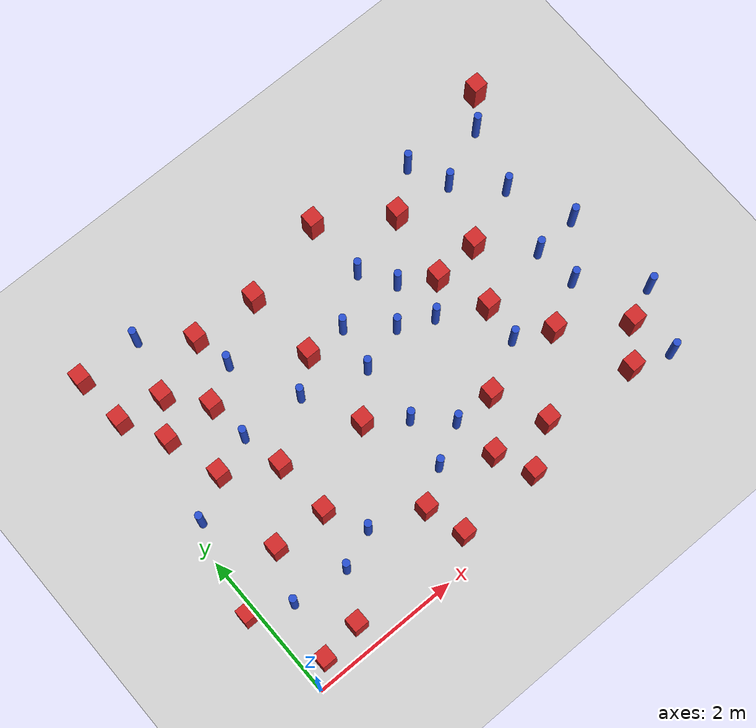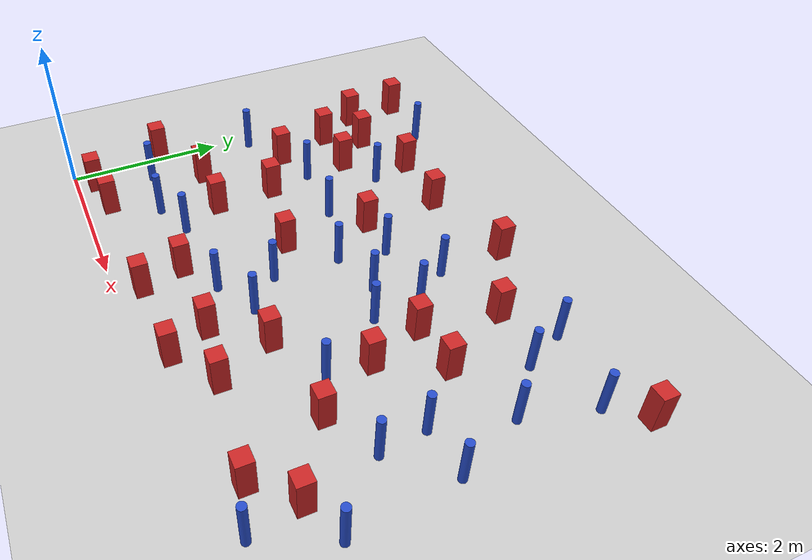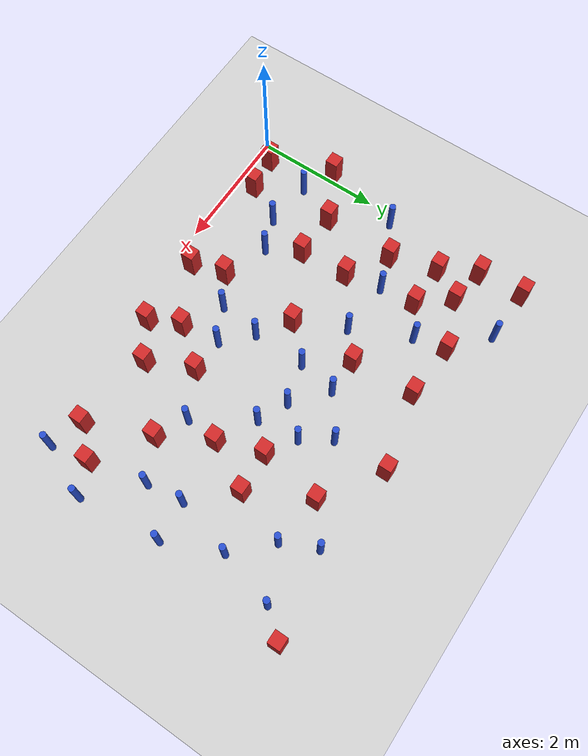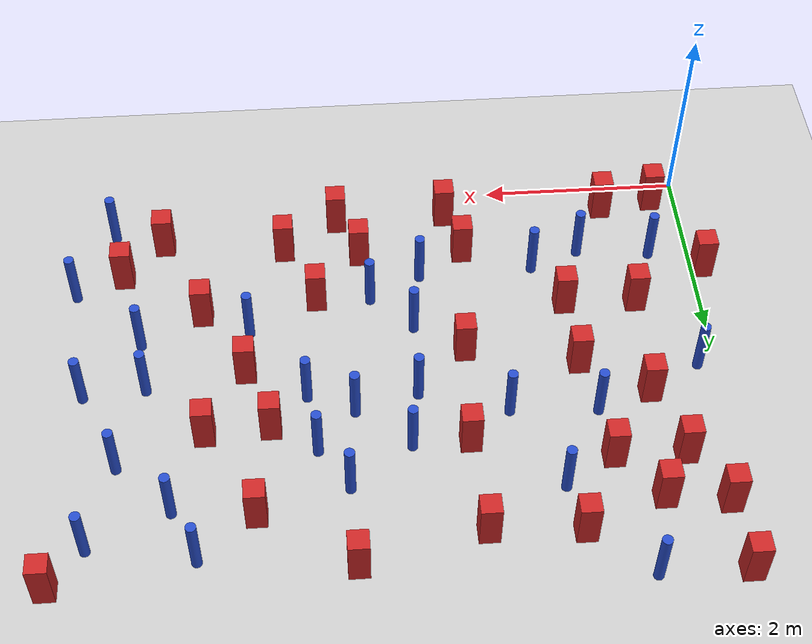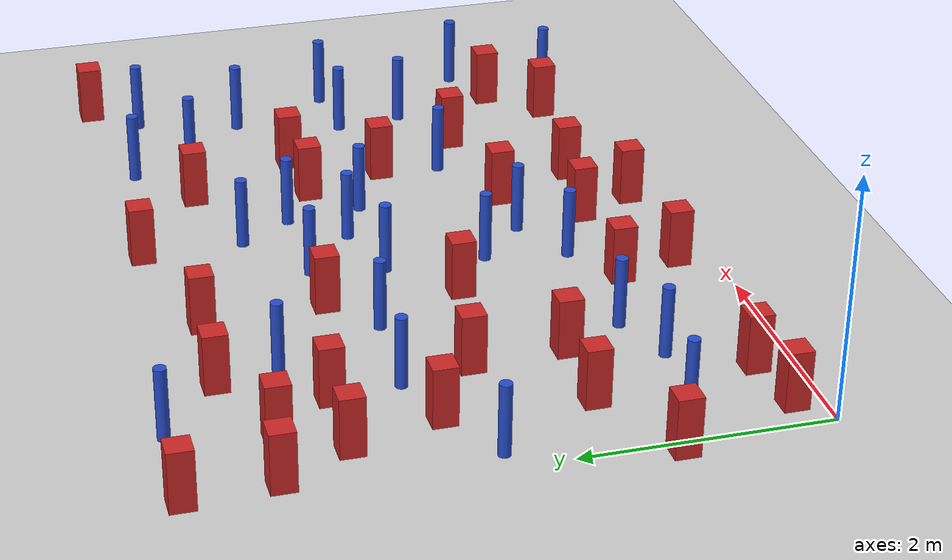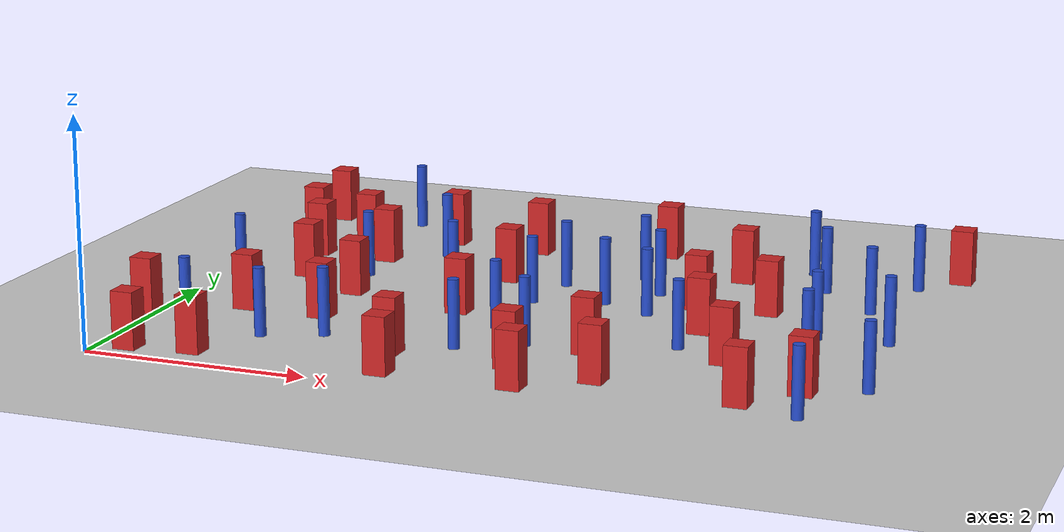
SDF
<sdf version="1.6">
 <world name="default">
  <model name="ground_plane">
   <static>1</static>
   <link name="link">
    <collision name="collision">
     <geometry><plane><normal>0 0 1</normal><size>100 100</size></plane></geometry>
     <surface><friction><ode><mu>100</mu><mu2>50</mu2></ode></friction></surface>
    </collision>
    <visual name="visual">
     <cast_shadows>0</cast_shadows>
     <geometry><plane><normal>0 0 1</normal><size>100 100</size></plane></geometry>
     <material>
      <ambient>1.0 1.0 1.0 1.0</ambient>
      <diffuse>0.8 0.8 0.8 1.0</diffuse>
      <specular>0.01 0.01 0.01 1.000000</specular>
     </material>
    </visual>
   </link>
  </model>
  <model name="pole_obstacle1">
   <static>true</static>
   <pose>3.94145928123 3.25235252601 2.88873142074e-08 -9.90536690232e-09 4.6021994898e-07 -1.20965994968e-07</pose>
   <link name="link">
    <pose>0 0 0.3 0 -0 0</pose>
    <inertial>
     <mass>1</mass>
     <inertia><ixx>0.145833</ixx><ixy>0</ixy><ixz>0</ixz><iyy>0.145833</iyy><iyz>0</iyz><izz>0.125</izz></inertia>
    </inertial>
    <collision name="collision">
     <geometry><cylinder><radius>0.05</radius><length>.6</length></cylinder></geometry>
    </collision>
    <visual name="visual">
     <geometry><cylinder><radius>0.05</radius><length>.6</length></cylinder></geometry>
     <material>
      <script><name>Gazebo/Blue</name><uri>file://media/materials/scripts/gazebo.material</uri></script>
     </material>
    </visual>
   </link>
  </model>
  <model name="pole_obstacle5">
   <static>true</static>
   <pose>1.15568861815 0.909828647617 2.88873142074e-08 -9.90536689692e-09 4.60219948993e-07 -1.20965994958e-07</pose>
   <link name="link">
    <pose>0 0 0.3 0 -0 0</pose>
    <inertial>
     <mass>1</mass>
     <inertia><ixx>0.145833</ixx><ixy>0</ixy><ixz>0</ixz><iyy>0.145833</iyy><iyz>0</iyz><izz>0.125</izz></inertia>
    </inertial>
    <collision name="collision">
     <geometry><cylinder><radius>0.05</radius><length>.6</length></cylinder></geometry>
    </collision>
    <visual name="visual">
     <geometry><cylinder><radius>0.05</radius><length>.6</length></cylinder></geometry>
     <material>
      <script><name>Gazebo/Blue</name><uri>file://media/materials/scripts/gazebo.material</uri></script>
     </material>
    </visual>
   </link>
  </model>
  <model name="square_post_obstacle7">
   <static>true</static>
   <pose>5.44254563058 0.562767419311 8.22691968438e-08 7.2212513382e-06 -7.54495500217e-07 2.29674213826e-05</pose>
   <link name="link">
    <pose>0 0 0.25 0 -0 0</pose>
    <inertial>
     <mass>100</mass>
     <inertia>
      <ixx>0.166667</ixx>
      <ixy>0</ixy>
      <ixz>0</ixz>
      <iyy>0.166667</iyy>
      <iyz>0</iyz>
      <izz>0.166667</izz>
     </inertia>
    </inertial>
    <collision name="collision"><geometry><box><size>.2 .2 .5</size></box></geometry></collision>
    <visual name="visual">
     <geometry><box><size>.2 .2 .5</size></box></geometry>
     <material>
      <script><name>Gazebo/Red</name><uri>file://media/materials/scripts/gazebo.material</uri></script>
     </material>
    </visual>
   </link>
  </model>
  <model name="pole_obstacle6">
   <static>true</static>
   <pose>3.05227530506 3.25262592409 2.88873142074e-08 -9.90536690232e-09 4.6021994898e-07 -1.20965994968e-07</pose>
   <link name="link">
    <pose>0 0 0.3 0 -0 0</pose>
    <inertial>
     <mass>1</mass>
     <inertia><ixx>0.145833</ixx><ixy>0</ixy><ixz>0</ixz><iyy>0.145833</iyy><iyz>0</iyz><izz>0.125</izz></inertia>
    </inertial>
    <collision name="collision">
     <geometry><cylinder><radius>0.05</radius><length>.6</length></cylinder></geometry>
    </collision>
    <visual name="visual">
     <geometry><cylinder><radius>0.05</radius><length>.6</length></cylinder></geometry>
     <material>
      <script><name>Gazebo/Blue</name><uri>file://media/materials/scripts/gazebo.material</uri></script>
     </material>
    </visual>
   </link>
  </model>
  <model name="square_post_obstacle17">
   <static>true</static>
   <pose>2.50358971569 3.25167115299 8.22691968438e-08 7.2212513382e-06 -7.54495500217e-07 2.29674213826e-05</pose>
   <link name="link">
    <pose>0 0 0.25 0 -0 0</pose>
    <inertial>
     <mass>100</mass>
     <inertia>
      <ixx>0.166667</ixx>
      <ixy>0</ixy>
      <ixz>0</ixz>
      <iyy>0.166667</iyy>
      <iyz>0</iyz>
      <izz>0.166667</izz>
     </inertia>
    </inertial>
    <collision name="collision"><geometry><box><size>.2 .2 .5</size></box></geometry></collision>
    <visual name="visual">
     <geometry><box><size>.2 .2 .5</size></box></geometry>
     <material>
      <script><name>Gazebo/Red</name><uri>file://media/materials/scripts/gazebo.material</uri></script>
     </material>
    </visual>
   </link>
  </model>
  <model name="pole_obstacle14">
   <static>true</static>
   <pose>3.56848363034 2.82322414847 2.88873142074e-08 -9.90536690232e-09 4.6021994898e-07 -1.20965994968e-07</pose>
   <link name="link">
    <pose>0 0 0.3 0 -0 0</pose>
    <inertial>
     <mass>1</mass>
     <inertia><ixx>0.145833</ixx><ixy>0</ixy><ixz>0</ixz><iyy>0.145833</iyy><iyz>0</iyz><izz>0.125</izz></inertia>
    </inertial>
    <collision name="collision">
     <geometry><cylinder><radius>0.05</radius><length>.6</length></cylinder></geometry>
    </collision>
    <visual name="visual">
     <geometry><cylinder><radius>0.05</radius><length>.6</length></cylinder></geometry>
     <material>
      <script><name>Gazebo/Blue</name><uri>file://media/materials/scripts/gazebo.material</uri></script>
     </material>
    </visual>
   </link>
  </model>
  <model name="pole_obstacle18">
   <static>true</static>
   <pose>5.96523020983 0.386765181012 2.88873142074e-08 -9.90536689981e-09 4.60219948986e-07 -1.20965994962e-07</pose>
   <link name="link">
    <pose>0 0 0.3 0 -0 0</pose>
    <inertial>
     <mass>1</mass>
     <inertia><ixx>0.145833</ixx><ixy>0</ixy><ixz>0</ixz><iyy>0.145833</iyy><iyz>0</iyz><izz>0.125</izz></inertia>
    </inertial>
    <collision name="collision">
     <geometry><cylinder><radius>0.05</radius><length>.6</length></cylinder></geometry>
    </collision>
    <visual name="visual">
     <geometry><cylinder><radius>0.05</radius><length>.6</length></cylinder></geometry>
     <material>
      <script><name>Gazebo/Blue</name><uri>file://media/materials/scripts/gazebo.material</uri></script>
     </material>
    </visual>
   </link>
  </model>
  <model name="square_post_obstacle28">
   <static>true</static>
   <pose>0.71189217481 2.78563970039 8.22691968438e-08 7.2212513382e-06 -7.54495500217e-07 2.29674213826e-05</pose>
   <link name="link">
    <pose>0 0 0.25 0 -0 0</pose>
    <inertial>
     <mass>100</mass>
     <inertia>
      <ixx>0.166667</ixx>
      <ixy>0</ixy>
      <ixz>0</ixz>
      <iyy>0.166667</iyy>
      <iyz>0</iyz>
      <izz>0.166667</izz>
     </inertia>
    </inertial>
    <collision name="collision"><geometry><box><size>.2 .2 .5</size></box></geometry></collision>
    <visual name="visual">
     <geometry><box><size>.2 .2 .5</size></box></geometry>
     <material>
      <script><name>Gazebo/Red</name><uri>file://media/materials/scripts/gazebo.material</uri></script>
     </material>
    </visual>
   </link>
  </model>
  <model name="square_post_obstacle39">
   <static>true</static>
   <pose>0.501299653124 3.51987766097 8.22691968438e-08 7.2212513382e-06 -7.54495500217e-07 2.29674213826e-05</pose>
   <link name="link">
    <pose>0 0 0.25 0 -0 0</pose>
    <inertial>
     <mass>100</mass>
     <inertia>
      <ixx>0.166667</ixx>
      <ixy>0</ixy>
      <ixz>0</ixz>
      <iyy>0.166667</iyy>
      <iyz>0</iyz>
      <izz>0.166667</izz>
     </inertia>
    </inertial>
    <collision name="collision"><geometry><box><size>.2 .2 .5</size></box></geometry></collision>
    <visual name="visual">
     <geometry><box><size>.2 .2 .5</size></box></geometry>
     <material>
      <script><name>Gazebo/Red</name><uri>file://media/materials/scripts/gazebo.material</uri></script>
     </material>
    </visual>
   </link>
  </model>
  <model name="square_post_obstacle40">
   <static>true</static>
   <pose>0.27143165079 0.245713718609 8.22691968438e-08 7.2212513382e-06 -7.54495500217e-07 2.29674213826e-05</pose>
   <link name="link">
    <pose>0 0 0.25 0 -0 0</pose>
    <inertial>
     <mass>100</mass>
     <inertia>
      <ixx>0.166667</ixx>
      <ixy>0</ixy>
      <ixz>0</ixz>
      <iyy>0.166667</iyy>
      <iyz>0</iyz>
      <izz>0.166667</izz>
     </inertia>
    </inertial>
    <collision name="collision"><geometry><box><size>.2 .2 .5</size></box></geometry></collision>
    <visual name="visual">
     <geometry><box><size>.2 .2 .5</size></box></geometry>
     <material>
      <script><name>Gazebo/Red</name><uri>file://media/materials/scripts/gazebo.material</uri></script>
     </material>
    </visual>
   </link>
  </model>
  <model name="pole_obstacle48">
   <static>true</static>
   <pose>1.6671823128 3.79995229118 2.88873142074e-08 -9.90536689791e-09 4.6021994899e-07 -1.20965994959e-07</pose>
   <link name="link">
    <pose>0 0 0.3 0 -0 0</pose>
    <inertial>
     <mass>1</mass>
     <inertia><ixx>0.145833</ixx><ixy>0</ixy><ixz>0</ixz><iyy>0.145833</iyy><iyz>0</iyz><izz>0.125</izz></inertia>
    </inertial>
    <collision name="collision">
     <geometry><cylinder><radius>0.05</radius><length>.6</length></cylinder></geometry>
    </collision>
    <visual name="visual">
     <geometry><cylinder><radius>0.05</radius><length>.6</length></cylinder></geometry>
     <material>
      <script><name>Gazebo/Blue</name><uri>file://media/materials/scripts/gazebo.material</uri></script>
     </material>
    </visual>
   </link>
  </model>
  <model name="pole_obstacle49">
   <static>true</static>
   <pose>2.95070600059 2.65302911917 2.88873142074e-08 -9.90536690232e-09 4.6021994898e-07 -1.20965994968e-07</pose>
   <link name="link">
    <pose>0 0 0.3 0 -0 0</pose>
    <inertial>
     <mass>1</mass>
     <inertia><ixx>0.145833</ixx><ixy>0</ixy><ixz>0</ixz><iyy>0.145833</iyy><iyz>0</iyz><izz>0.125</izz></inertia>
    </inertial>
    <collision name="collision">
     <geometry><cylinder><radius>0.05</radius><length>.6</length></cylinder></geometry>
    </collision>
    <visual name="visual">
     <geometry><cylinder><radius>0.05</radius><length>.6</length></cylinder></geometry>
     <material>
      <script><name>Gazebo/Blue</name><uri>file://media/materials/scripts/gazebo.material</uri></script>
     </material>
    </visual>
   </link>
  </model>
  <model name="square_post_obstacle52">
   <static>true</static>
   <pose>0.824553978532 0.324145552143 8.22691968438e-08 7.22125133819e-06 -7.54495500217e-07 2.29674213826e-05</pose>
   <link name="link">
    <pose>0 0 0.25 0 -0 0</pose>
    <inertial>
     <mass>100</mass>
     <inertia>
      <ixx>0.166667</ixx>
      <ixy>0</ixy>
      <ixz>0</ixz>
      <iyy>0.166667</iyy>
      <iyz>0</iyz>
      <izz>0.166667</izz>
     </inertia>
    </inertial>
    <collision name="collision"><geometry><box><size>.2 .2 .5</size></box></geometry></collision>
    <visual name="visual">
     <geometry><box><size>.2 .2 .5</size></box></geometry>
     <material>
      <script><name>Gazebo/Red</name><uri>file://media/materials/scripts/gazebo.material</uri></script>
     </material>
    </visual>
   </link>
  </model>
  <model name="square_post_obstacle57">
   <static>true</static>
   <pose>5.03759961073 1.54476784764 8.22691968438e-08 7.2212513382e-06 -7.54495500217e-07 2.29674213826e-05</pose>
   <link name="link">
    <pose>0 0 0.25 0 -0 0</pose>
    <inertial>
     <mass>100</mass>
     <inertia>
      <ixx>0.166667</ixx>
      <ixy>0</ixy>
      <ixz>0</ixz>
      <iyy>0.166667</iyy>
      <iyz>0</iyz>
      <izz>0.166667</izz>
     </inertia>
    </inertial>
    <collision name="collision"><geometry><box><size>.2 .2 .5</size></box></geometry></collision>
    <visual name="visual">
     <geometry><box><size>.2 .2 .5</size></box></geometry>
     <material>
      <script><name>Gazebo/Red</name><uri>file://media/materials/scripts/gazebo.material</uri></script>
     </material>
    </visual>
   </link>
  </model>
  <model name="pole_obstacle63">
   <static>true</static>
   <pose>5.06277176892 4.37193636384 2.88873142074e-08 -9.90536690842e-09 4.60219948965e-07 -1.20965994976e-07</pose>
   <link name="link">
    <pose>0 0 0.3 0 -0 0</pose>
    <inertial>
     <mass>1</mass>
     <inertia><ixx>0.145833</ixx><ixy>0</ixy><ixz>0</ixz><iyy>0.145833</iyy><iyz>0</iyz><izz>0.125</izz></inertia>
    </inertial>
    <collision name="collision">
     <geometry><cylinder><radius>0.05</radius><length>.6</length></cylinder></geometry>
    </collision>
    <visual name="visual">
     <geometry><cylinder><radius>0.05</radius><length>.6</length></cylinder></geometry>
     <material>
      <script><name>Gazebo/Blue</name><uri>file://media/materials/scripts/gazebo.material</uri></script>
     </material>
    </visual>
   </link>
  </model>
  <model name="square_post_obstacle73">
   <static>true</static>
   <pose>5.00421460632 3.02159867123 8.22691968438e-08 7.2212513382e-06 -7.54495500217e-07 2.29674213826e-05</pose>
   <link name="link">
    <pose>0 0 0.25 0 -0 0</pose>
    <inertial>
     <mass>100</mass>
     <inertia>
      <ixx>0.166667</ixx>
      <ixy>0</ixy>
      <ixz>0</ixz>
      <iyy>0.166667</iyy>
      <iyz>0</iyz>
      <izz>0.166667</izz>
     </inertia>
    </inertial>
    <collision name="collision"><geometry><box><size>.2 .2 .5</size></box></geometry></collision>
    <visual name="visual">
     <geometry><box><size>.2 .2 .5</size></box></geometry>
     <material>
      <script><name>Gazebo/Red</name><uri>file://media/materials/scripts/gazebo.material</uri></script>
     </material>
    </visual>
   </link>
  </model>
  <model name="square_post_obstacle75">
   <static>true</static>
   <pose>0.19816951591 4.07948838997 8.22691968438e-08 7.2212513382e-06 -7.54495500217e-07 2.29674213826e-05</pose>
   <link name="link">
    <pose>0 0 0.25 0 -0 0</pose>
    <inertial>
     <mass>100</mass>
     <inertia>
      <ixx>0.166667</ixx>
      <ixy>0</ixy>
      <ixz>0</ixz>
      <iyy>0.166667</iyy>
      <iyz>0</iyz>
      <izz>0.166667</izz>
     </inertia>
    </inertial>
    <collision name="collision"><geometry><box><size>.2 .2 .5</size></box></geometry></collision>
    <visual name="visual">
     <geometry><box><size>.2 .2 .5</size></box></geometry>
     <material>
      <script><name>Gazebo/Red</name><uri>file://media/materials/scripts/gazebo.material</uri></script>
     </material>
    </visual>
   </link>
  </model>
  <model name="pole_obstacle73">
   <static>true</static>
   <pose>2.93315307802 1.82003700261 2.88873142074e-08 -9.90536689395e-09 4.60219949e-07 -1.20965994953e-07</pose>
   <link name="link">
    <pose>0 0 0.3 0 -0 0</pose>
    <inertial>
     <mass>1</mass>
     <inertia><ixx>0.145833</ixx><ixy>0</ixy><ixz>0</ixz><iyy>0.145833</iyy><iyz>0</iyz><izz>0.125</izz></inertia>
    </inertial>
    <collision name="collision">
     <geometry><cylinder><radius>0.05</radius><length>.6</length></cylinder></geometry>
    </collision>
    <visual name="visual">
     <geometry><cylinder><radius>0.05</radius><length>.6</length></cylinder></geometry>
     <material>
      <script><name>Gazebo/Blue</name><uri>file://media/materials/scripts/gazebo.material</uri></script>
     </material>
    </visual>
   </link>
  </model>
  <model name="pole_obstacle77">
   <static>true</static>
   <pose>1.65673848284 1.10668738786 2.88873142074e-08 -9.90536689672e-09 4.60219948993e-07 -1.20965994959e-07</pose>
   <link name="link">
    <pose>0 0 0.3 0 -0 0</pose>
    <inertial>
     <mass>1</mass>
     <inertia><ixx>0.145833</ixx><ixy>0</ixy><ixz>0</ixz><iyy>0.145833</iyy><iyz>0</iyz><izz>0.125</izz></inertia>
    </inertial>
    <collision name="collision">
     <geometry><cylinder><radius>0.05</radius><length>.6</length></cylinder></geometry>
    </collision>
    <visual name="visual">
     <geometry><cylinder><radius>0.05</radius><length>.6</length></cylinder></geometry>
     <material>
      <script><name>Gazebo/Blue</name><uri>file://media/materials/scripts/gazebo.material</uri></script>
     </material>
    </visual>
   </link>
  </model>
  <model name="pole_obstacle79">
   <static>true</static>
   <pose>5.83107753629 3.32872732967 2.88873142074e-08 -9.90536690245e-09 4.6021994898e-07 -1.20965994966e-07</pose>
   <link name="link">
    <pose>0 0 0.3 0 -0 0</pose>
    <inertial>
     <mass>1</mass>
     <inertia><ixx>0.145833</ixx><ixy>0</ixy><ixz>0</ixz><iyy>0.145833</iyy><iyz>0</iyz><izz>0.125</izz></inertia>
    </inertial>
    <collision name="collision">
     <geometry><cylinder><radius>0.05</radius><length>.6</length></cylinder></geometry>
    </collision>
    <visual name="visual">
     <geometry><cylinder><radius>0.05</radius><length>.6</length></cylinder></geometry>
     <material>
      <script><name>Gazebo/Blue</name><uri>file://media/materials/scripts/gazebo.material</uri></script>
     </material>
    </visual>
   </link>
  </model>
  <model name="pole_obstacle85">
   <static>true</static>
   <pose>0.181410010292 2.47327323451 2.88873142074e-08 -9.90536689569e-09 4.60219948995e-07 -1.20965994955e-07</pose>
   <link name="link">
    <pose>0 0 0.3 0 -0 0</pose>
    <inertial>
     <mass>1</mass>
     <inertia><ixx>0.145833</ixx><ixy>0</ixy><ixz>0</ixz><iyy>0.145833</iyy><iyz>0</iyz><izz>0.125</izz></inertia>
    </inertial>
    <collision name="collision">
     <geometry><cylinder><radius>0.05</radius><length>.6</length></cylinder></geometry>
    </collision>
    <visual name="visual">
     <geometry><cylinder><radius>0.05</radius><length>.6</length></cylinder></geometry>
     <material>
      <script><name>Gazebo/Blue</name><uri>file://media/materials/scripts/gazebo.material</uri></script>
     </material>
    </visual>
   </link>
  </model>
  <model name="pole_obstacle92">
   <static>true</static>
   <pose>4.5711787582 1.77863008984 2.88873142074e-08 -9.90536689445e-09 4.60219948999e-07 -1.20965994956e-07</pose>
   <link name="link">
    <pose>0 0 0.3 0 -0 0</pose>
    <inertial>
     <mass>1</mass>
     <inertia><ixx>0.145833</ixx><ixy>0</ixy><ixz>0</ixz><iyy>0.145833</iyy><iyz>0</iyz><izz>0.125</izz></inertia>
    </inertial>
    <collision name="collision">
     <geometry><cylinder><radius>0.05</radius><length>.6</length></cylinder></geometry>
    </collision>
    <visual name="visual">
     <geometry><cylinder><radius>0.05</radius><length>.6</length></cylinder></geometry>
     <material>
      <script><name>Gazebo/Blue</name><uri>file://media/materials/scripts/gazebo.material</uri></script>
     </material>
    </visual>
   </link>
  </model>
  <model name="square_post_obstacle83">
   <static>true</static>
   <pose>0.669904435998 1.6401510628 8.22691968438e-08 7.2212513382e-06 -7.54495500217e-07 2.29674213826e-05</pose>
   <link name="link">
    <pose>0 0 0.25 0 -0 0</pose>
    <inertial>
     <mass>100</mass>
     <inertia>
      <ixx>0.166667</ixx>
      <ixy>0</ixy>
      <ixz>0</ixz>
      <iyy>0.166667</iyy>
      <iyz>0</iyz>
      <izz>0.166667</izz>
     </inertia>
    </inertial>
    <collision name="collision"><geometry><box><size>.2 .2 .5</size></box></geometry></collision>
    <visual name="visual">
     <geometry><box><size>.2 .2 .5</size></box></geometry>
     <material>
      <script><name>Gazebo/Red</name><uri>file://media/materials/scripts/gazebo.material</uri></script>
     </material>
    </visual>
   </link>
  </model>
  <model name="pole_obstacle105">
   <static>true</static>
   <pose>0.410325103925 0.99251207532 2.88873142074e-08 -9.90536689641e-09 4.60219948994e-07 -1.20965994956e-07</pose>
   <link name="link">
    <pose>0 0 0.3 0 -0 0</pose>
    <inertial>
     <mass>1</mass>
     <inertia><ixx>0.145833</ixx><ixy>0</ixy><ixz>0</ixz><iyy>0.145833</iyy><iyz>0</iyz><izz>0.125</izz></inertia>
    </inertial>
    <collision name="collision">
     <geometry><cylinder><radius>0.05</radius><length>.6</length></cylinder></geometry>
    </collision>
    <visual name="visual">
     <geometry><cylinder><radius>0.05</radius><length>.6</length></cylinder></geometry>
     <material>
      <script><name>Gazebo/Blue</name><uri>file://media/materials/scripts/gazebo.material</uri></script>
     </material>
    </visual>
   </link>
  </model>
  <model name="square_post_obstacle94">
   <static>true</static>
   <pose>0.156408534408 4.79203358237 8.22691968438e-08 7.2212513382e-06 -7.54495500217e-07 2.29674213826e-05</pose>
   <link name="link">
    <pose>0 0 0.25 0 -0 0</pose>
    <inertial>
     <mass>100</mass>
     <inertia>
      <ixx>0.166667</ixx>
      <ixy>0</ixy>
      <ixz>0</ixz>
      <iyy>0.166667</iyy>
      <iyz>0</iyz>
      <izz>0.166667</izz>
     </inertia>
    </inertial>
    <collision name="collision"><geometry><box><size>.2 .2 .5</size></box></geometry></collision>
    <visual name="visual">
     <geometry><box><size>.2 .2 .5</size></box></geometry>
     <material>
      <script><name>Gazebo/Red</name><uri>file://media/materials/scripts/gazebo.material</uri></script>
     </material>
    </visual>
   </link>
  </model>
  <model name="square_post_obstacle96">
   <static>true</static>
   <pose>3.42814478149 0.832832476468 8.22691968438e-08 7.2212513382e-06 -7.54495500217e-07 2.29674213826e-05</pose>
   <link name="link">
    <pose>0 0 0.25 0 -0 0</pose>
    <inertial>
     <mass>100</mass>
     <inertia>
      <ixx>0.166667</ixx>
      <ixy>0</ixy>
      <ixz>0</ixz>
      <iyy>0.166667</iyy>
      <iyz>0</iyz>
      <izz>0.166667</izz>
     </inertia>
    </inertial>
    <collision name="collision"><geometry><box><size>.2 .2 .5</size></box></geometry></collision>
    <visual name="visual">
     <geometry><box><size>.2 .2 .5</size></box></geometry>
     <material>
      <script><name>Gazebo/Red</name><uri>file://media/materials/scripts/gazebo.material</uri></script>
     </material>
    </visual>
   </link>
  </model>
  <model name="square_post_obstacle99">
   <static>true</static>
   <pose>3.62608536704 4.5308937451 8.22691968438e-08 7.2212513382e-06 -7.54495500217e-07 2.29674213826e-05</pose>
   <link name="link">
    <pose>0 0 0.25 0 -0 0</pose>
    <inertial>
     <mass>100</mass>
     <inertia>
      <ixx>0.166667</ixx>
      <ixy>0</ixy>
      <ixz>0</ixz>
      <iyy>0.166667</iyy>
      <iyz>0</iyz>
      <izz>0.166667</izz>
     </inertia>
    </inertial>
    <collision name="collision"><geometry><box><size>.2 .2 .5</size></box></geometry></collision>
    <visual name="visual">
     <geometry><box><size>.2 .2 .5</size></box></geometry>
     <material>
      <script><name>Gazebo/Red</name><uri>file://media/materials/scripts/gazebo.material</uri></script>
     </material>
    </visual>
   </link>
  </model>
  <model name="pole_obstacle113">
   <static>true</static>
   <pose>1.23753624162 2.95687868084 2.88873142074e-08 -9.90536689791e-09 4.6021994899e-07 -1.20965994959e-07</pose>
   <link name="link">
    <pose>0 0 0.3 0 -0 0</pose>
    <inertial>
     <mass>1</mass>
     <inertia><ixx>0.145833</ixx><ixy>0</ixy><ixz>0</ixz><iyy>0.145833</iyy><iyz>0</iyz><izz>0.125</izz></inertia>
    </inertial>
    <collision name="collision">
     <geometry><cylinder><radius>0.05</radius><length>.6</length></cylinder></geometry>
    </collision>
    <visual name="visual">
     <geometry><cylinder><radius>0.05</radius><length>.6</length></cylinder></geometry>
     <material>
      <script><name>Gazebo/Blue</name><uri>file://media/materials/scripts/gazebo.material</uri></script>
     </material>
    </visual>
   </link>
  </model>
  <model name="pole_obstacle115">
   <static>true</static>
   <pose>2.82312814159 1.14673025917 2.88873142074e-08 -9.90536689395e-09 4.60219949e-07 -1.20965994953e-07</pose>
   <link name="link">
    <pose>0 0 0.3 0 -0 0</pose>
    <inertial>
     <mass>1</mass>
     <inertia><ixx>0.145833</ixx><ixy>0</ixy><ixz>0</ixz><iyy>0.145833</iyy><iyz>0</iyz><izz>0.125</izz></inertia>
    </inertial>
    <collision name="collision">
     <geometry><cylinder><radius>0.05</radius><length>.6</length></cylinder></geometry>
    </collision>
    <visual name="visual">
     <geometry><cylinder><radius>0.05</radius><length>.6</length></cylinder></geometry>
     <material>
      <script><name>Gazebo/Blue</name><uri>file://media/materials/scripts/gazebo.material</uri></script>
     </material>
    </visual>
   </link>
  </model>
  <model name="square_post_obstacle105">
   <static>true</static>
   <pose>2.50747562912 0.327599965815 8.22691968438e-08 7.2212513382e-06 -7.54495500217e-07 2.29674213826e-05</pose>
   <link name="link">
    <pose>0 0 0.25 0 -0 0</pose>
    <inertial>
     <mass>100</mass>
     <inertia>
      <ixx>0.166667</ixx>
      <ixy>0</ixy>
      <ixz>0</ixz>
      <iyy>0.166667</iyy>
      <iyz>0</iyz>
      <izz>0.166667</izz>
     </inertia>
    </inertial>
    <collision name="collision"><geometry><box><size>.2 .2 .5</size></box></geometry></collision>
    <visual name="visual">
     <geometry><box><size>.2 .2 .5</size></box></geometry>
     <material>
      <script><name>Gazebo/Red</name><uri>file://media/materials/scripts/gazebo.material</uri></script>
     </material>
    </visual>
   </link>
  </model>
  <model name="square_post_obstacle113">
   <static>true</static>
   <pose>3.89140445451 1.41724098343 8.22691968438e-08 7.2212513382e-06 -7.54495500217e-07 2.29674213826e-05</pose>
   <link name="link">
    <pose>0 0 0.25 0 -0 0</pose>
    <inertial>
     <mass>100</mass>
     <inertia>
      <ixx>0.166667</ixx>
      <ixy>0</ixy>
      <ixz>0</ixz>
      <iyy>0.166667</iyy>
      <iyz>0</iyz>
      <izz>0.166667</izz>
     </inertia>
    </inertial>
    <collision name="collision"><geometry><box><size>.2 .2 .5</size></box></geometry></collision>
    <visual name="visual">
     <geometry><box><size>.2 .2 .5</size></box></geometry>
     <material>
      <script><name>Gazebo/Red</name><uri>file://media/materials/scripts/gazebo.material</uri></script>
     </material>
    </visual>
   </link>
  </model>
  <model name="pole_obstacle132">
   <static>true</static>
   <pose>0.986537404231 4.77752517151 2.88873142074e-08 -9.90536689421e-09 4.60219948999e-07 -1.20965994953e-07</pose>
   <link name="link">
    <pose>0 0 0.3 0 -0 0</pose>
    <inertial>
     <mass>1</mass>
     <inertia><ixx>0.145833</ixx><ixy>0</ixy><ixz>0</ixz><iyy>0.145833</iyy><iyz>0</iyz><izz>0.125</izz></inertia>
    </inertial>
    <collision name="collision">
     <geometry><cylinder><radius>0.05</radius><length>.6</length></cylinder></geometry>
    </collision>
    <visual name="visual">
     <geometry><cylinder><radius>0.05</radius><length>.6</length></cylinder></geometry>
     <material>
      <script><name>Gazebo/Blue</name><uri>file://media/materials/scripts/gazebo.material</uri></script>
     </material>
    </visual>
   </link>
  </model>
  <model name="pole_obstacle133">
   <static>true</static>
   <pose>3.65789475686 3.68943758655 2.88873142074e-08 -9.90536690232e-09 4.6021994898e-07 -1.20965994968e-07</pose>
   <link name="link">
    <pose>0 0 0.3 0 -0 0</pose>
    <inertial>
     <mass>1</mass>
     <inertia><ixx>0.145833</ixx><ixy>0</ixy><ixz>0</ixz><iyy>0.145833</iyy><iyz>0</iyz><izz>0.125</izz></inertia>
    </inertial>
    <collision name="collision">
     <geometry><cylinder><radius>0.05</radius><length>.6</length></cylinder></geometry>
    </collision>
    <visual name="visual">
     <geometry><cylinder><radius>0.05</radius><length>.6</length></cylinder></geometry>
     <material>
      <script><name>Gazebo/Blue</name><uri>file://media/materials/scripts/gazebo.material</uri></script>
     </material>
    </visual>
   </link>
  </model>
  <model name="square_post_obstacle131">
   <static>true</static>
   <pose>-0.101049078952 1.23102676638 8.22691968438e-08 7.2212513382e-06 -7.54495500217e-07 2.29674213826e-05</pose>
   <link name="link">
    <pose>0 0 0.25 0 -0 0</pose>
    <inertial>
     <mass>100</mass>
     <inertia>
      <ixx>0.166667</ixx>
      <ixy>0</ixy>
      <ixz>0</ixz>
      <iyy>0.166667</iyy>
      <iyz>0</iyz>
      <izz>0.166667</izz>
     </inertia>
    </inertial>
    <collision name="collision"><geometry><box><size>.2 .2 .5</size></box></geometry></collision>
    <visual name="visual">
     <geometry><box><size>.2 .2 .5</size></box></geometry>
     <material>
      <script><name>Gazebo/Red</name><uri>file://media/materials/scripts/gazebo.material</uri></script>
     </material>
    </visual>
   </link>
  </model>
  <model name="square_post_obstacle135">
   <static>true</static>
   <pose>3.6438339921 0.346166714443 8.22691968438e-08 7.2212513382e-06 -7.54495500217e-07 2.29674213826e-05</pose>
   <link name="link">
    <pose>0 0 0.25 0 -0 0</pose>
    <inertial>
     <mass>100</mass>
     <inertia>
      <ixx>0.166667</ixx>
      <ixy>0</ixy>
      <ixz>0</ixz>
      <iyy>0.166667</iyy>
      <iyz>0</iyz>
      <izz>0.166667</izz>
     </inertia>
    </inertial>
    <collision name="collision"><geometry><box><size>.2 .2 .5</size></box></geometry></collision>
    <visual name="visual">
     <geometry><box><size>.2 .2 .5</size></box></geometry>
     <material>
      <script><name>Gazebo/Red</name><uri>file://media/materials/scripts/gazebo.material</uri></script>
     </material>
    </visual>
   </link>
  </model>
  <model name="pole_obstacle146">
   <static>true</static>
   <pose>3.34634976861 1.42414883327 2.88873142074e-08 -9.90536689395e-09 4.60219949e-07 -1.20965994953e-07</pose>
   <link name="link">
    <pose>0 0 0.3 0 -0 0</pose>
    <inertial>
     <mass>1</mass>
     <inertia><ixx>0.145833</ixx><ixy>0</ixy><ixz>0</ixz><iyy>0.145833</iyy><iyz>0</iyz><izz>0.125</izz></inertia>
    </inertial>
    <collision name="collision">
     <geometry><cylinder><radius>0.05</radius><length>.6</length></cylinder></geometry>
    </collision>
    <visual name="visual">
     <geometry><cylinder><radius>0.05</radius><length>.6</length></cylinder></geometry>
     <material>
      <script><name>Gazebo/Blue</name><uri>file://media/materials/scripts/gazebo.material</uri></script>
     </material>
    </visual>
   </link>
  </model>
  <model name="pole_obstacle147">
   <static>true</static>
   <pose>4.02399622385 2.61480210127 2.88873142074e-08 -9.90536689988e-09 4.60219948986e-07 -1.20965994963e-07</pose>
   <link name="link">
    <pose>0 0 0.3 0 -0 0</pose>
    <inertial>
     <mass>1</mass>
     <inertia><ixx>0.145833</ixx><ixy>0</ixy><ixz>0</ixz><iyy>0.145833</iyy><iyz>0</iyz><izz>0.125</izz></inertia>
    </inertial>
    <collision name="collision">
     <geometry><cylinder><radius>0.05</radius><length>.6</length></cylinder></geometry>
    </collision>
    <visual name="visual">
     <geometry><cylinder><radius>0.05</radius><length>.6</length></cylinder></geometry>
     <material>
      <script><name>Gazebo/Blue</name><uri>file://media/materials/scripts/gazebo.material</uri></script>
     </material>
    </visual>
   </link>
  </model>
  <model name="square_post_obstacle139">
   <static>true</static>
   <pose>1.35277157423 2.39097678968 8.22691968438e-08 7.2212513382e-06 -7.54495500217e-07 2.29674213826e-05</pose>
   <link name="link">
    <pose>0 0 0.25 0 -0 0</pose>
    <inertial>
     <mass>100</mass>
     <inertia>
      <ixx>0.166667</ixx>
      <ixy>0</ixy>
      <ixz>0</ixz>
      <iyy>0.166667</iyy>
      <iyz>0</iyz>
      <izz>0.166667</izz>
     </inertia>
    </inertial>
    <collision name="collision"><geometry><box><size>.2 .2 .5</size></box></geometry></collision>
    <visual name="visual">
     <geometry><box><size>.2 .2 .5</size></box></geometry>
     <material>
      <script><name>Gazebo/Red</name><uri>file://media/materials/scripts/gazebo.material</uri></script>
     </material>
    </visual>
   </link>
  </model>
  <model name="square_post_obstacle140">
   <static>true</static>
   <pose>4.52313522253 3.94384849847 8.22691968438e-08 7.2212513382e-06 -7.54495500217e-07 2.29674213826e-05</pose>
   <link name="link">
    <pose>0 0 0.25 0 -0 0</pose>
    <inertial>
     <mass>100</mass>
     <inertia>
      <ixx>0.166667</ixx>
      <ixy>0</ixy>
      <ixz>0</ixz>
      <iyy>0.166667</iyy>
      <iyz>0</iyz>
      <izz>0.166667</izz>
     </inertia>
    </inertial>
    <collision name="collision"><geometry><box><size>.2 .2 .5</size></box></geometry></collision>
    <visual name="visual">
     <geometry><box><size>.2 .2 .5</size></box></geometry>
     <material>
      <script><name>Gazebo/Red</name><uri>file://media/materials/scripts/gazebo.material</uri></script>
     </material>
    </visual>
   </link>
  </model>
  <model name="square_post_obstacle141">
   <static>true</static>
   <pose>2.4548353645 2.16135983993 8.22691968438e-08 7.2212513382e-06 -7.54495500217e-07 2.29674213826e-05</pose>
   <link name="link">
    <pose>0 0 0.25 0 -0 0</pose>
    <inertial>
     <mass>100</mass>
     <inertia>
      <ixx>0.166667</ixx>
      <ixy>0</ixy>
      <ixz>0</ixz>
      <iyy>0.166667</iyy>
      <iyz>0</iyz>
      <izz>0.166667</izz>
     </inertia>
    </inertial>
    <collision name="collision"><geometry><box><size>.2 .2 .5</size></box></geometry></collision>
    <visual name="visual">
     <geometry><box><size>.2 .2 .5</size></box></geometry>
     <material>
      <script><name>Gazebo/Red</name><uri>file://media/materials/scripts/gazebo.material</uri></script>
     </material>
    </visual>
   </link>
  </model>
  <model name="square_post_obstacle151">
   <static>true</static>
   <pose>4.20056297409 0.721490768722 8.22691968438e-08 7.2212513382e-06 -7.54495500217e-07 2.29674213826e-05</pose>
   <link name="link">
    <pose>0 0 0.25 0 -0 0</pose>
    <inertial>
     <mass>100</mass>
     <inertia>
      <ixx>0.166667</ixx>
      <ixy>0</ixy>
      <ixz>0</ixz>
      <iyy>0.166667</iyy>
      <iyz>0</iyz>
      <izz>0.166667</izz>
     </inertia>
    </inertial>
    <collision name="collision"><geometry><box><size>.2 .2 .5</size></box></geometry></collision>
    <visual name="visual">
     <geometry><box><size>.2 .2 .5</size></box></geometry>
     <material>
      <script><name>Gazebo/Red</name><uri>file://media/materials/scripts/gazebo.material</uri></script>
     </material>
    </visual>
   </link>
  </model>
  <model name="pole_obstacle158">
   <static>true</static>
   <pose>6.19236946296 2.48167276741 2.88873142074e-08 -9.90536690245e-09 4.6021994898e-07 -1.20965994966e-07</pose>
   <link name="link">
    <pose>0 0 0.3 0 -0 0</pose>
    <inertial>
     <mass>1</mass>
     <inertia><ixx>0.145833</ixx><ixy>0</ixy><ixz>0</ixz><iyy>0.145833</iyy><iyz>0</iyz><izz>0.125</izz></inertia>
    </inertial>
    <collision name="collision">
     <geometry><cylinder><radius>0.05</radius><length>.6</length></cylinder></geometry>
    </collision>
    <visual name="visual">
     <geometry><cylinder><radius>0.05</radius><length>.6</length></cylinder></geometry>
     <material>
      <script><name>Gazebo/Blue</name><uri>file://media/materials/scripts/gazebo.material</uri></script>
     </material>
    </visual>
   </link>
  </model>
  <model name="pole_obstacle162">
   <static>true</static>
   <pose>2.09098859705 2.90933291249 2.88873142074e-08 -9.90536690232e-09 4.6021994898e-07 -1.20965994968e-07</pose>
   <link name="link">
    <pose>0 0 0.3 0 -0 0</pose>
    <inertial>
     <mass>1</mass>
     <inertia><ixx>0.145833</ixx><ixy>0</ixy><ixz>0</ixz><iyy>0.145833</iyy><iyz>0</iyz><izz>0.125</izz></inertia>
    </inertial>
    <collision name="collision">
     <geometry><cylinder><radius>0.05</radius><length>.6</length></cylinder></geometry>
    </collision>
    <visual name="visual">
     <geometry><cylinder><radius>0.05</radius><length>.6</length></cylinder></geometry>
     <material>
      <script><name>Gazebo/Blue</name><uri>file://media/materials/scripts/gazebo.material</uri></script>
     </material>
    </visual>
   </link>
  </model>
  <model name="pole_obstacle165">
   <static>true</static>
   <pose>5.64950932741 1.86480257349 2.88873142074e-08 -9.90536689445e-09 4.60219948999e-07 -1.20965994956e-07</pose>
   <link name="link">
    <pose>0 0 0.3 0 -0 0</pose>
    <inertial>
     <mass>1</mass>
     <inertia><ixx>0.145833</ixx><ixy>0</ixy><ixz>0</ixz><iyy>0.145833</iyy><iyz>0</iyz><izz>0.125</izz></inertia>
    </inertial>
    <collision name="collision">
     <geometry><cylinder><radius>0.05</radius><length>.6</length></cylinder></geometry>
    </collision>
    <visual name="visual">
     <geometry><cylinder><radius>0.05</radius><length>.6</length></cylinder></geometry>
     <material>
      <script><name>Gazebo/Blue</name><uri>file://media/materials/scripts/gazebo.material</uri></script>
     </material>
    </visual>
   </link>
  </model>
  <model name="pole_obstacle171">
   <static>true</static>
   <pose>5.58154128794 2.43402422196 2.88873142074e-08 -9.90536690245e-09 4.6021994898e-07 -1.20965994966e-07</pose>
   <link name="link">
    <pose>0 0 0.3 0 -0 0</pose>
    <inertial>
     <mass>1</mass>
     <inertia><ixx>0.145833</ixx><ixy>0</ixy><ixz>0</ixz><iyy>0.145833</iyy><iyz>0</iyz><izz>0.125</izz></inertia>
    </inertial>
    <collision name="collision">
     <geometry><cylinder><radius>0.05</radius><length>.6</length></cylinder></geometry>
    </collision>
    <visual name="visual">
     <geometry><cylinder><radius>0.05</radius><length>.6</length></cylinder></geometry>
     <material>
      <script><name>Gazebo/Blue</name><uri>file://media/materials/scripts/gazebo.material</uri></script>
     </material>
    </visual>
   </link>
  </model>
  <model name="square_post_obstacle169">
   <static>true</static>
   <pose>2.36359787108 0.855111028839 8.22691968438e-08 7.2212513382e-06 -7.54495500217e-07 2.29674213826e-05</pose>
   <link name="link">
    <pose>0 0 0.25 0 -0 0</pose>
    <inertial>
     <mass>100</mass>
     <inertia>
      <ixx>0.166667</ixx>
      <ixy>0</ixy>
      <ixz>0</ixz>
      <iyy>0.166667</iyy>
      <iyz>0</iyz>
      <izz>0.166667</izz>
     </inertia>
    </inertial>
    <collision name="collision"><geometry><box><size>.2 .2 .5</size></box></geometry></collision>
    <visual name="visual">
     <geometry><box><size>.2 .2 .5</size></box></geometry>
     <material>
      <script><name>Gazebo/Red</name><uri>file://media/materials/scripts/gazebo.material</uri></script>
     </material>
    </visual>
   </link>
  </model>
  <model name="pole_obstacle181">
   <static>true</static>
   <pose>6.06502179605 4.1928008202 2.88873142074e-08 -9.90536690842e-09 4.60219948965e-07 -1.20965994976e-07</pose>
   <link name="link">
    <pose>0 0 0.3 0 -0 0</pose>
    <inertial>
     <mass>1</mass>
     <inertia><ixx>0.145833</ixx><ixy>0</ixy><ixz>0</ixz><iyy>0.145833</iyy><iyz>0</iyz><izz>0.125</izz></inertia>
    </inertial>
    <collision name="collision">
     <geometry><cylinder><radius>0.05</radius><length>.6</length></cylinder></geometry>
    </collision>
    <visual name="visual">
     <geometry><cylinder><radius>0.05</radius><length>.6</length></cylinder></geometry>
     <material>
      <script><name>Gazebo/Blue</name><uri>file://media/materials/scripts/gazebo.material</uri></script>
     </material>
    </visual>
   </link>
  </model>
  <model name="square_post_obstacle172">
   <static>true</static>
   <pose>5.84731585801 0.988236536767 8.22691968438e-08 7.2212513382e-06 -7.54495500217e-07 2.29674213826e-05</pose>
   <link name="link">
    <pose>0 0 0.25 0 -0 0</pose>
    <inertial>
     <mass>100</mass>
     <inertia>
      <ixx>0.166667</ixx>
      <ixy>0</ixy>
      <ixz>0</ixz>
      <iyy>0.166667</iyy>
      <iyz>0</iyz>
      <izz>0.166667</izz>
     </inertia>
    </inertial>
    <collision name="collision"><geometry><box><size>.2 .2 .5</size></box></geometry></collision>
    <visual name="visual">
     <geometry><box><size>.2 .2 .5</size></box></geometry>
     <material>
      <script><name>Gazebo/Red</name><uri>file://media/materials/scripts/gazebo.material</uri></script>
     </material>
    </visual>
   </link>
  </model>
  <model name="square_post_obstacle175">
   <static>true</static>
   <pose>4.37821149252 2.98151004702 8.22691968438e-08 7.2212513382e-06 -7.54495500217e-07 2.29674213826e-05</pose>
   <link name="link">
    <pose>0 0 0.25 0 -0 0</pose>
    <inertial>
     <mass>100</mass>
     <inertia>
      <ixx>0.166667</ixx>
      <ixy>0</ixy>
      <ixz>0</ixz>
      <iyy>0.166667</iyy>
      <iyz>0</iyz>
      <izz>0.166667</izz>
     </inertia>
    </inertial>
    <collision name="collision"><geometry><box><size>.2 .2 .5</size></box></geometry></collision>
    <visual name="visual">
     <geometry><box><size>.2 .2 .5</size></box></geometry>
     <material>
      <script><name>Gazebo/Red</name><uri>file://media/materials/scripts/gazebo.material</uri></script>
     </material>
    </visual>
   </link>
  </model>
  <model name="square_post_obstacle189">
   <static>true</static>
   <pose>6.38399661186 4.57989894192 8.22691968438e-08 7.2212513382e-06 -7.54495500217e-07 2.29674213826e-05</pose>
   <link name="link">
    <pose>0 0 0.25 0 -0 0</pose>
    <inertial>
     <mass>100</mass>
     <inertia>
      <ixx>0.166667</ixx>
      <ixy>0</ixy>
      <ixz>0</ixz>
      <iyy>0.166667</iyy>
      <iyz>0</iyz>
      <izz>0.166667</izz>
     </inertia>
    </inertial>
    <collision name="collision"><geometry><box><size>.2 .2 .5</size></box></geometry></collision>
    <visual name="visual">
     <geometry><box><size>.2 .2 .5</size></box></geometry>
     <material>
      <script><name>Gazebo/Red</name><uri>file://media/materials/scripts/gazebo.material</uri></script>
     </material>
    </visual>
   </link>
  </model>
  <model name="square_post_obstacle194">
   <static>true</static>
   <pose>1.39214653656 1.62084094187 8.22691968438e-08 7.2212513382e-06 -7.54495500217e-07 2.29674213826e-05</pose>
   <link name="link">
    <pose>0 0 0.25 0 -0 0</pose>
    <inertial>
     <mass>100</mass>
     <inertia>
      <ixx>0.166667</ixx>
      <ixy>0</ixy>
      <ixz>0</ixz>
      <iyy>0.166667</iyy>
      <iyz>0</iyz>
      <izz>0.166667</izz>
     </inertia>
    </inertial>
    <collision name="collision"><geometry><box><size>.2 .2 .5</size></box></geometry></collision>
    <visual name="visual">
     <geometry><box><size>.2 .2 .5</size></box></geometry>
     <material>
      <script><name>Gazebo/Red</name><uri>file://media/materials/scripts/gazebo.material</uri></script>
     </material>
    </visual>
   </link>
  </model>
  <model name="square_post_obstacle200">
   <static>true</static>
   <pose>4.61252207354 2.29730677316 8.22691968438e-08 7.2212513382e-06 -7.54495500217e-07 2.29674213826e-05</pose>
   <link name="link">
    <pose>0 0 0.25 0 -0 0</pose>
    <inertial>
     <mass>100</mass>
     <inertia>
      <ixx>0.166667</ixx>
      <ixy>0</ixy>
      <ixz>0</ixz>
      <iyy>0.166667</iyy>
      <iyz>0</iyz>
      <izz>0.166667</izz>
     </inertia>
    </inertial>
    <collision name="collision"><geometry><box><size>.2 .2 .5</size></box></geometry></collision>
    <visual name="visual">
     <geometry><box><size>.2 .2 .5</size></box></geometry>
     <material>
      <script><name>Gazebo/Red</name><uri>file://media/materials/scripts/gazebo.material</uri></script>
     </material>
    </visual>
   </link>
  </model>
  <model name="pole_obstacle201">
   <static>true</static>
   <pose>5.30409325333 3.84484280091 2.88873142074e-08 -9.90536690245e-09 4.6021994898e-07 -1.20965994966e-07</pose>
   <link name="link">
    <pose>0 0 0.3 0 -0 0</pose>
    <inertial>
     <mass>1</mass>
     <inertia><ixx>0.145833</ixx><ixy>0</ixy><ixz>0</ixz><iyy>0.145833</iyy><iyz>0</iyz><izz>0.125</izz></inertia>
    </inertial>
    <collision name="collision">
     <geometry><cylinder><radius>0.05</radius><length>.6</length></cylinder></geometry>
    </collision>
    <visual name="visual">
     <geometry><cylinder><radius>0.05</radius><length>.6</length></cylinder></geometry>
     <material>
      <script><name>Gazebo/Blue</name><uri>file://media/materials/scripts/gazebo.material</uri></script>
     </material>
    </visual>
   </link>
  </model>
  <model name="pole_obstacle206">
   <static>true</static>
   <pose>6.32614230334 1.19163214743 2.88873142074e-08 -9.90536689445e-09 4.60219948999e-07 -1.20965994956e-07</pose>
   <link name="link">
    <pose>0 0 0.3 0 -0 0</pose>
    <inertial>
     <mass>1</mass>
     <inertia><ixx>0.145833</ixx><ixy>0</ixy><ixz>0</ixz><iyy>0.145833</iyy><iyz>0</iyz><izz>0.125</izz></inertia>
    </inertial>
    <collision name="collision">
     <geometry><cylinder><radius>0.05</radius><length>.6</length></cylinder></geometry>
    </collision>
    <visual name="visual">
     <geometry><cylinder><radius>0.05</radius><length>.6</length></cylinder></geometry>
     <material>
      <script><name>Gazebo/Blue</name><uri>file://media/materials/scripts/gazebo.material</uri></script>
     </material>
    </visual>
   </link>
  </model>
  <model name="square_post_obstacle213">
   <static>true</static>
   <pose>1.56449976866 4.29947708802 8.22691968438e-08 7.2212513382e-06 -7.54495500217e-07 2.29674213826e-05</pose>
   <link name="link">
    <pose>0 0 0.25 0 -0 0</pose>
    <inertial>
     <mass>100</mass>
     <inertia>
      <ixx>0.166667</ixx>
      <ixy>0</ixy>
      <ixz>0</ixz>
      <iyy>0.166667</iyy>
      <iyz>0</iyz>
      <izz>0.166667</izz>
     </inertia>
    </inertial>
    <collision name="collision"><geometry><box><size>.2 .2 .5</size></box></geometry></collision>
    <visual name="visual">
     <geometry><box><size>.2 .2 .5</size></box></geometry>
     <material>
      <script><name>Gazebo/Red</name><uri>file://media/materials/scripts/gazebo.material</uri></script>
     </material>
    </visual>
   </link>
  </model>
  <model name="square_post_obstacle217">
   <static>true</static>
   <pose>0.787991739055 3.99065707994 8.22691968438e-08 7.2212513382e-06 -7.54495500217e-07 2.29674213826e-05</pose>
   <link name="link">
    <pose>0 0 0.25 0 -0 0</pose>
    <inertial>
     <mass>100</mass>
     <inertia>
      <ixx>0.166667</ixx>
      <ixy>0</ixy>
      <ixz>0</ixz>
      <iyy>0.166667</iyy>
      <iyz>0</iyz>
      <izz>0.166667</izz>
     </inertia>
    </inertial>
    <collision name="collision"><geometry><box><size>.2 .2 .5</size></box></geometry></collision>
    <visual name="visual">
     <geometry><box><size>.2 .2 .5</size></box></geometry>
     <material>
      <script><name>Gazebo/Red</name><uri>file://media/materials/scripts/gazebo.material</uri></script>
     </material>
    </visual>
   </link>
  </model>
  <model name="square_post_obstacle225">
   <static>true</static>
   <pose>2.4404040753 4.2479495204 8.22691968438e-08 7.2212513382e-06 -7.54495500217e-07 2.29674213826e-05</pose>
   <link name="link">
    <pose>0 0 0.25 0 -0 0</pose>
    <inertial>
     <mass>100</mass>
     <inertia>
      <ixx>0.166667</ixx>
      <ixy>0</ixy>
      <ixz>0</ixz>
      <iyy>0.166667</iyy>
      <iyz>0</iyz>
      <izz>0.166667</izz>
     </inertia>
    </inertial>
    <collision name="collision"><geometry><box><size>.2 .2 .5</size></box></geometry></collision>
    <visual name="visual">
     <geometry><box><size>.2 .2 .5</size></box></geometry>
     <material>
      <script><name>Gazebo/Red</name><uri>file://media/materials/scripts/gazebo.material</uri></script>
     </material>
    </visual>
   </link>
  </model>
  <model name="square_post_obstacle229">
   <static>true</static>
   <pose>1.1843853413 3.51458086471 8.22691968438e-08 7.2212513382e-06 -7.54495500217e-07 2.29674213826e-05</pose>
   <link name="link">
    <pose>0 0 0.25 0 -0 0</pose>
    <inertial>
     <mass>100</mass>
     <inertia>
      <ixx>0.166667</ixx>
      <ixy>0</ixy>
      <ixz>0</ixz>
      <iyy>0.166667</iyy>
      <iyz>0</iyz>
      <izz>0.166667</izz>
     </inertia>
    </inertial>
    <collision name="collision"><geometry><box><size>.2 .2 .5</size></box></geometry></collision>
    <visual name="visual">
     <geometry><box><size>.2 .2 .5</size></box></geometry>
     <material>
      <script><name>Gazebo/Red</name><uri>file://media/materials/scripts/gazebo.material</uri></script>
     </material>
    </visual>
   </link>
  </model>
 </world>
</sdf>
